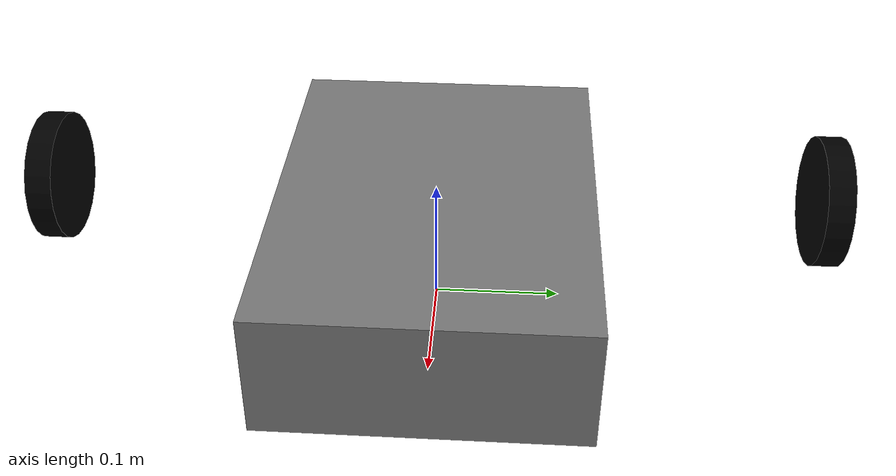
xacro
<?xml version="1.0"?>
<robot name="two_wheeled_robot" xmlns:xacro="http://ros.org/wiki/xacro">

  <!-- Simple two-wheeled differential robot xacro -->
  <xacro:property name="wheel_radius" value="0.05"/>
  <xacro:property name="wheel_width" value="0.02"/>
  <xacro:property name="wheel_separation" value="0.3"/>
  <xacro:property name="body_length" value="0.35"/>
  <xacro:property name="body_width" value="0.25"/>
  <xacro:property name="body_height" value="0.10"/>

  <material name="gray"><color rgba="0.5 0.5 0.5 1"/></material>
  <material name="black"><color rgba="0 0 0 1"/></material>

  <!-- base_link (root) -->
  <link name="base_link">
    <visual>
      <origin xyz="0 0 ${body_height/2}" rpy="0 0 0"/>
      <geometry>
        <box size="${body_length} ${body_width} ${body_height}"/>
      </geometry>
      <material name="gray"/>
    </visual>
    <collision>
      <origin xyz="0 0 ${body_height/2}" rpy="0 0 0"/>
      <geometry>
        <box size="${body_length} ${body_width} ${body_height}"/>
      </geometry>
    </collision>
    <inertial>
      <mass value="3.0"/>
      <inertia ixx="0.02" ixy="0" ixz="0" iyy="0.02" iyz="0" izz="0.03"/>
    </inertial>
  </link>

  <!-- wheel macro -->
  <xacro:macro name="wheel" params="name y">
    <link name="${name}_link">
      <visual>
        <origin xyz="0 ${y} ${wheel_radius}" rpy="1.5708 0 0"/>
        <geometry><cylinder radius="${wheel_radius}" length="${wheel_width}"/></geometry>
        <material name="black"/>
      </visual>
      <collision>
        <origin xyz="0 ${y} ${wheel_radius}" rpy="1.5708 0 0"/>
        <geometry><cylinder radius="${wheel_radius}" length="${wheel_width}"/></geometry>
      </collision>
      <inertial>
        <mass value="0.2"/>
        <inertia ixx="0.001" ixy="0" ixz="0" iyy="0.001" iyz="0" izz="0.001"/>
      </inertial>
    </link>

    <joint name="${name}_joint" type="continuous">
      <origin xyz="0 ${y} ${wheel_radius}" rpy="0 0 0"/>
      <parent link="base_link"/>
      <child link="${name}_link"/>
      <axis xyz="0 1 0"/>
    </joint>
  </xacro:macro>

  <!-- left and right wheels -->
  <xacro:wheel name="left_wheel" y="${wheel_separation/2}"/>
  <xacro:wheel name="right_wheel" y="${-wheel_separation/2}"/>

  <!-- OPTIONAL: Gazebo differential drive plugin (uncomment to use) -->

</robot>
